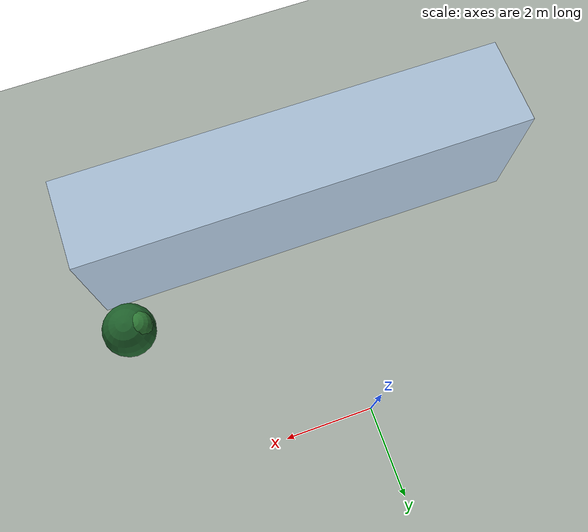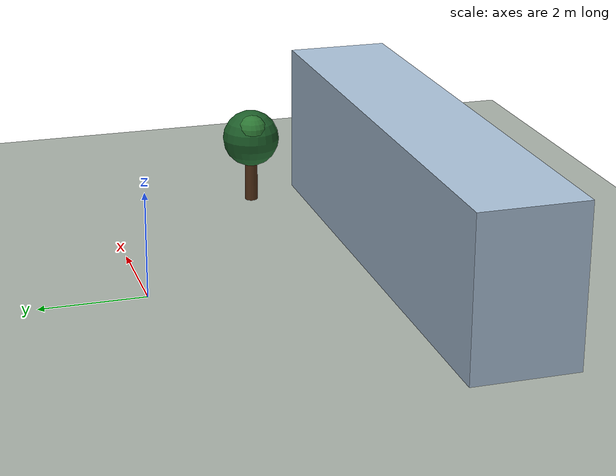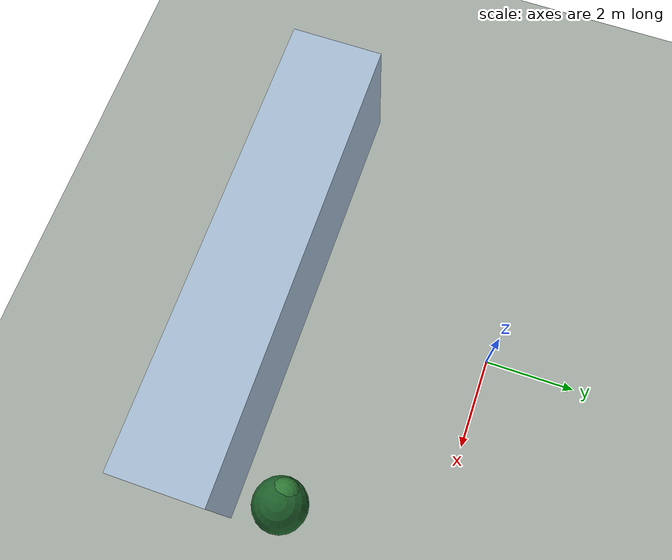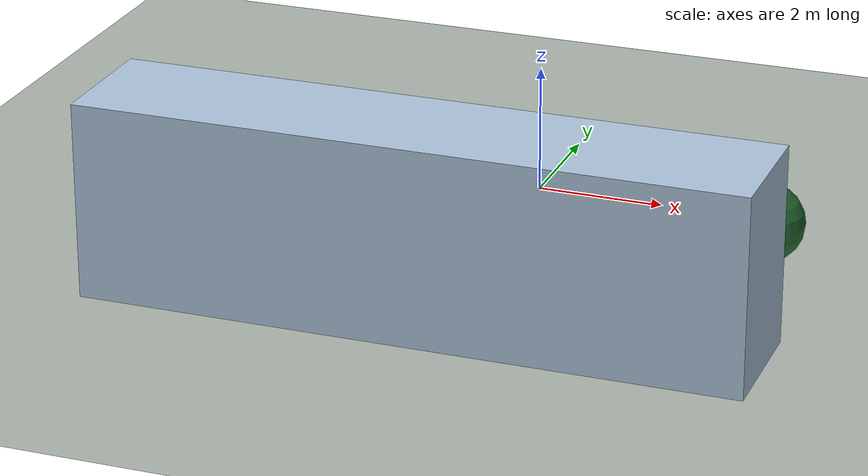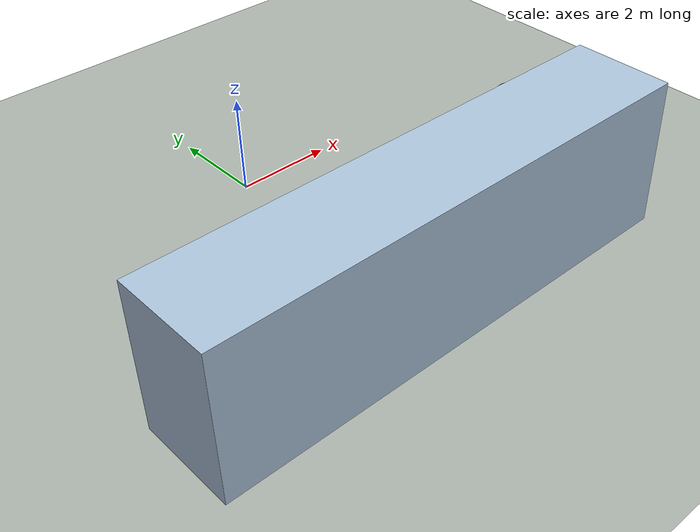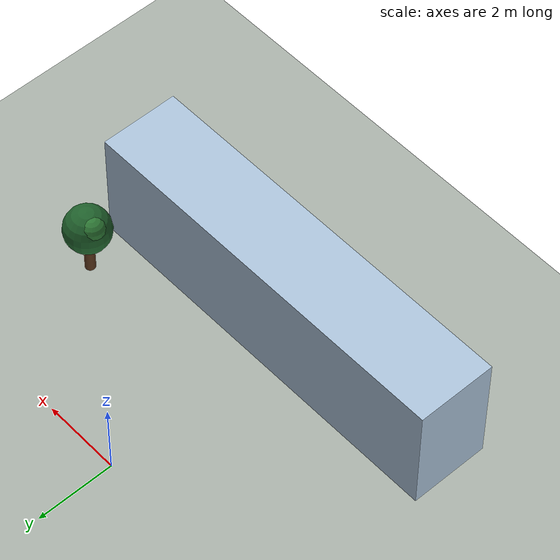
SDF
<sdf version="1.9">
 <world name="campus_world">
  <model name="ground">
   <static>true</static>
   <link name="ground_link">
    <collision name="ground_collision">
     <geometry><plane><normal>0 0 1</normal><size>100 100</size></plane></geometry>
    </collision>
    <visual name="ground_visual">
     <geometry><plane><normal>0 0 1</normal><size>100 100</size></plane></geometry>
     <material><diffuse>0.66 0.69 0.66 1</diffuse></material>
    </visual>
   </link>
  </model>
  <model name="tree_south_east">
   <static>true</static>
   <pose>4.45 -3.15 0 0 0 0</pose>
   <link name="tree">
    <collision name="trunk_collision">
     <pose>0 0 0.43 0 0 0</pose>
     <geometry><cylinder><radius>0.13</radius><length>0.86</length></cylinder></geometry>
    </collision>
    <visual name="trunk">
     <pose>0 0 0.43 0 0 0</pose>
     <geometry><cylinder><radius>0.13</radius><length>0.86</length></cylinder></geometry>
     <material><diffuse>0.34 0.20 0.10 1</diffuse></material>
    </visual>
    <visual name="canopy">
     <pose>0 0 1.34 0 0 0</pose>
     <geometry><sphere><radius>0.58</radius></sphere></geometry>
     <material><diffuse>0.12 0.38 0.17 1</diffuse></material>
    </visual>
    <visual name="canopy_highlight">
     <pose>-0.20 0.03 1.55 0 0 0</pose>
     <geometry><sphere><radius>0.34</radius></sphere></geometry>
     <material><diffuse>0.18 0.48 0.21 1</diffuse></material>
    </visual>
   </link>
  </model>
  <model name="south_library">
   <static>true</static>
   <pose>0 -5.2 1.5 0 0 0</pose>
   <link name="body">
    <collision name="collision"><geometry><box><size>10 2 3</size></box></geometry></collision>
    <visual name="visual">
     <geometry><box><size>10 2 3</size></box></geometry>
     <material><diffuse>0.67 0.76 0.85 1</diffuse></material>
    </visual>
   </link>
  </model>
 </world>
</sdf>
